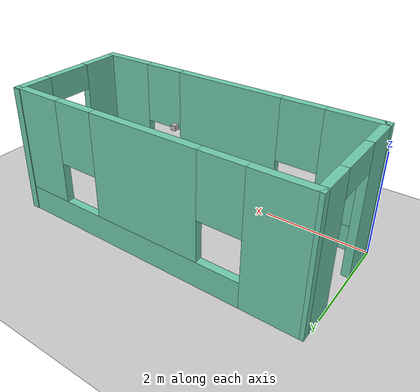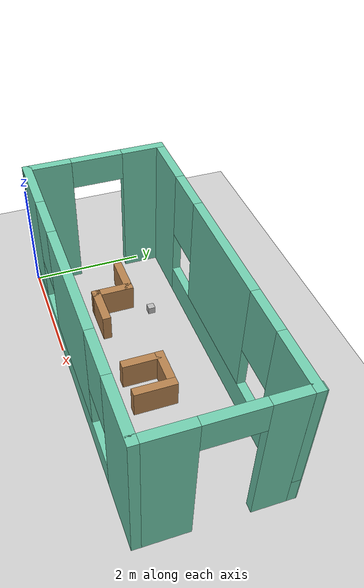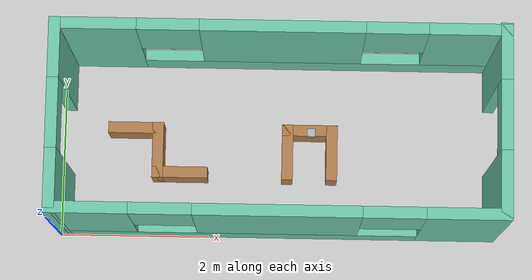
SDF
<sdf version="1.6">
 <world name="default">
  <light name="sun" type="directional">
   <pose>0 0 10 0 -0 0</pose>
   <diffuse>0.8 0.8 0.8 1</diffuse>
   <specular>0.2 0.2 0.2 1</specular>
   <attenuation>
    <range>1000</range>
    <constant>0.9</constant>
    <linear>0.01</linear>
    <quadratic>0.001</quadratic>
   </attenuation>
   <direction>-0.5 0.1 -0.9</direction>
  </light>
  <model name="ground_plane">
   <static>1</static>
   <link name="link">
    <collision name="collision">
     <geometry><plane><normal>0 0 1</normal><size>100 100</size></plane></geometry>
     <surface>
      <contact><collide_bitmask>65535</collide_bitmask></contact>
      <friction><ode><mu>100</mu><mu2>50</mu2></ode></friction>
     </surface>
    </collision>
    <visual name="visual">
     <cast_shadows>0</cast_shadows>
     <geometry><plane><normal>0 0 1</normal><size>100 100</size></plane></geometry>
     <material>
      <script><uri>file://media/materials/scripts/gazebo.material</uri><name>Gazebo/Grey</name></script>
     </material>
    </visual>
   </link>
  </model>
  <gravity>0 0 -9.8</gravity>
  <magnetic_field>6e-06 2.3e-05 -4.2e-05</magnetic_field>
  <atmosphere type="adiabatic"/>
  <physics name="default_physics" default="0" type="ode">
   <max_step_size>0.001</max_step_size>
   <real_time_factor>1</real_time_factor>
   <real_time_update_rate>1000</real_time_update_rate>
  </physics>
  <scene><ambient>0.4 0.4 0.4 1</ambient><background>0.7 0.7 0.7 1</background><shadows>1</shadows></scene>
  <audio><device>default</device></audio>
  <spherical_coordinates>
   <surface_model>EARTH_WGS84</surface_model>
   <latitude_deg>0</latitude_deg>
   <longitude_deg>0</longitude_deg>
   <elevation>0</elevation>
   <heading_deg>0</heading_deg>
  </spherical_coordinates>
  <model name="house_1">
   <pose>2.94761 1.2633 0 0 -0 0</pose>
   <link name="Wall_0">
    <pose>-2.86844 -0.008536 0 0 -0 1.5708</pose>
    <visual name="Wall_0_Visual_0">
     <pose>-0.837769 0 1.25 0 -0 0</pose>
     <geometry><box><size>0.824461 0.15 2.5</size></box></geometry>
     <material>
      <script><uri>file://media/materials/scripts/gazebo.material</uri><name>Gazebo/Grey</name></script>
      <ambient>0.435294 0.796078 0.67451 1</ambient>
     </material>
     <meta><layer>0</layer></meta>
    </visual>
    <collision name="Wall_0_Collision_0">
     <geometry><box><size>0.824461 0.15 2.5</size></box></geometry>
     <pose>-0.837769 0 1.25 0 -0 0</pose>
    </collision>
    <visual name="Wall_0_Visual_1">
     <pose>0.862231 0 1.25 0 -0 0</pose>
     <geometry><box><size>0.775539 0.15 2.5</size></box></geometry>
     <material>
      <script><uri>file://media/materials/scripts/gazebo.material</uri><name>Gazebo/Grey</name></script>
      <ambient>0.435294 0.796078 0.67451 1</ambient>
     </material>
     <meta><layer>0</layer></meta>
    </visual>
    <collision name="Wall_0_Collision_1">
     <geometry><box><size>0.775539 0.15 2.5</size></box></geometry>
     <pose>0.862231 0 1.25 0 -0 0</pose>
    </collision>
    <visual name="Wall_0_Visual_2">
     <pose>0.024461 0 2.25 0 -0 0</pose>
     <geometry><box><size>0.9 0.15 0.5</size></box></geometry>
     <material>
      <script><uri>file://media/materials/scripts/gazebo.material</uri><name>Gazebo/Grey</name></script>
      <ambient>0.435294 0.796078 0.67451 1</ambient>
     </material>
     <meta><layer>0</layer></meta>
    </visual>
    <collision name="Wall_0_Collision_2">
     <geometry><box><size>0.9 0.15 0.5</size></box></geometry>
     <pose>0.024461 0 2.25 0 -0 0</pose>
    </collision>
   </link>
   <link name="Wall_1">
    <pose>0 1.16741 0 0 -0 0.000329</pose>
    <visual name="Wall_1_Visual_0">
     <pose>-2.38896 0 1.25 0 -0 0</pose>
     <geometry><box><size>1.10948 0.15 2.5</size></box></geometry>
     <material>
      <script><uri>file://media/materials/scripts/gazebo.material</uri><name>Gazebo/Grey</name></script>
      <ambient>0.435294 0.796078 0.67451 1</ambient>
     </material>
     <meta><layer>0</layer></meta>
    </visual>
    <collision name="Wall_1_Collision_0">
     <geometry><box><size>1.10948 0.15 2.5</size></box></geometry>
     <pose>-2.38896 0 1.25 0 -0 0</pose>
    </collision>
    <visual name="Wall_1_Visual_1">
     <pose>0.554742 0 0.25 0 -0 0</pose>
     <geometry><box><size>4.77792 0.15 0.5</size></box></geometry>
     <material>
      <script><uri>file://media/materials/scripts/gazebo.material</uri><name>Gazebo/Grey</name></script>
      <ambient>0.435294 0.796078 0.67451 1</ambient>
     </material>
     <meta><layer>0</layer></meta>
    </visual>
    <collision name="Wall_1_Collision_1">
     <geometry><box><size>4.77792 0.15 0.5</size></box></geometry>
     <pose>0.554742 0 0.25 0 -0 0</pose>
    </collision>
    <visual name="Wall_1_Visual_2">
     <pose>0.024303 0 1.5 0 -0 0</pose>
     <geometry><box><size>2.11705 0.15 2</size></box></geometry>
     <material>
      <script><uri>file://media/materials/scripts/gazebo.material</uri><name>Gazebo/Grey</name></script>
      <ambient>0.435294 0.796078 0.67451 1</ambient>
     </material>
     <meta><layer>0</layer></meta>
    </visual>
    <collision name="Wall_1_Collision_2">
     <geometry><box><size>2.11705 0.15 2</size></box></geometry>
     <pose>0.024303 0 1.5 0 -0 0</pose>
    </collision>
    <visual name="Wall_1_Visual_3">
     <pose>2.41326 0 1.5 0 -0 0</pose>
     <geometry><box><size>1.06088 0.15 2</size></box></geometry>
     <material>
      <script><uri>file://media/materials/scripts/gazebo.material</uri><name>Gazebo/Grey</name></script>
      <ambient>0.435294 0.796078 0.67451 1</ambient>
     </material>
     <meta><layer>0</layer></meta>
    </visual>
    <collision name="Wall_1_Collision_3">
     <geometry><box><size>1.06088 0.15 2</size></box></geometry>
     <pose>2.41326 0 1.5 0 -0 0</pose>
    </collision>
    <visual name="Wall_1_Visual_4">
     <pose>-1.43422 0 1.9 0 -0 0</pose>
     <geometry><box><size>0.8 0.15 1.2</size></box></geometry>
     <material>
      <script><uri>file://media/materials/scripts/gazebo.material</uri><name>Gazebo/Grey</name></script>
      <ambient>0.435294 0.796078 0.67451 1</ambient>
     </material>
     <meta><layer>0</layer></meta>
    </visual>
    <collision name="Wall_1_Collision_4">
     <geometry><box><size>0.8 0.15 1.2</size></box></geometry>
     <pose>-1.43422 0 1.9 0 -0 0</pose>
    </collision>
    <visual name="Wall_1_Visual_5">
     <pose>1.48283 0 1.9 0 -0 0</pose>
     <geometry><box><size>0.8 0.15 1.2</size></box></geometry>
     <material>
      <script><uri>file://media/materials/scripts/gazebo.material</uri><name>Gazebo/Grey</name></script>
      <ambient>0.435294 0.796078 0.67451 1</ambient>
     </material>
     <meta><layer>0</layer></meta>
    </visual>
    <collision name="Wall_1_Collision_5">
     <geometry><box><size>0.8 0.15 1.2</size></box></geometry>
     <pose>1.48283 0 1.9 0 -0 0</pose>
    </collision>
   </link>
   <link name="Wall_10">
    <collision name="Wall_10_Collision">
     <geometry><box><size>0.75 0.15 0.5</size></box></geometry>
     <pose>0 0 0.25 0 -0 0</pose>
    </collision>
    <visual name="Wall_10_Visual">
     <pose>0 0 0.25 0 -0 0</pose>
     <geometry><box><size>0.75 0.15 0.5</size></box></geometry>
     <material>
      <script><uri>file://media/materials/scripts/gazebo.material</uri><name>Gazebo/Wood</name></script>
      <ambient>1 1 1 1</ambient>
     </material>
     <meta><layer>0</layer></meta>
    </visual>
    <pose>0.411561 0.159464 0 0 -0 0</pose>
   </link>
   <link name="Wall_11">
    <collision name="Wall_11_Collision">
     <geometry><box><size>0.75 0.15 0.5</size></box></geometry>
     <pose>0 0 0.25 0 -0 0</pose>
    </collision>
    <visual name="Wall_11_Visual">
     <pose>0 0 0.25 0 -0 0</pose>
     <geometry><box><size>0.75 0.15 0.5</size></box></geometry>
     <material>
      <script><uri>file://media/materials/scripts/gazebo.material</uri><name>Gazebo/Wood</name></script>
      <ambient>1 1 1 1</ambient>
     </material>
     <meta><layer>0</layer></meta>
    </visual>
    <pose>0.711561 -0.140536 0 0 -0 -1.5708</pose>
   </link>
   <link name="Wall_2">
    <pose>2.86844 0.008561 0 0 -0 -1.5708</pose>
    <visual name="Wall_2_Visual_0">
     <pose>-0.88778 0 1.25 0 -0 0</pose>
     <geometry><box><size>0.724439 0.15 2.5</size></box></geometry>
     <material>
      <script><uri>file://media/materials/scripts/gazebo.material</uri><name>Gazebo/Grey</name></script>
      <ambient>0.435294 0.796078 0.67451 1</ambient>
     </material>
     <meta><layer>0</layer></meta>
    </visual>
    <collision name="Wall_2_Collision_0">
     <geometry><box><size>0.724439 0.15 2.5</size></box></geometry>
     <pose>-0.88778 0 1.25 0 -0 0</pose>
    </collision>
    <visual name="Wall_2_Visual_1">
     <pose>0.81222 0 1.25 0 -0 0</pose>
     <geometry><box><size>0.875561 0.15 2.5</size></box></geometry>
     <material>
      <script><uri>file://media/materials/scripts/gazebo.material</uri><name>Gazebo/Grey</name></script>
      <ambient>0.435294 0.796078 0.67451 1</ambient>
     </material>
     <meta><layer>0</layer></meta>
    </visual>
    <collision name="Wall_2_Collision_1">
     <geometry><box><size>0.875561 0.15 2.5</size></box></geometry>
     <pose>0.81222 0 1.25 0 -0 0</pose>
    </collision>
    <visual name="Wall_2_Visual_2">
     <pose>-0.075561 0 2.25 0 -0 0</pose>
     <geometry><box><size>0.9 0.15 0.5</size></box></geometry>
     <material>
      <script><uri>file://media/materials/scripts/gazebo.material</uri><name>Gazebo/Grey</name></script>
      <ambient>0.435294 0.796078 0.67451 1</ambient>
     </material>
     <meta><layer>0</layer></meta>
    </visual>
    <collision name="Wall_2_Collision_2">
     <geometry><box><size>0.9 0.15 0.5</size></box></geometry>
     <pose>-0.075561 0 2.25 0 -0 0</pose>
    </collision>
   </link>
   <link name="Wall_3">
    <pose>0 -1.18259 0 0 -0 -3.14126</pose>
    <visual name="Wall_3_Visual_0">
     <pose>-2.40433 0 1.25 0 -0 0</pose>
     <geometry><box><size>1.07875 0.15 2.5</size></box></geometry>
     <material>
      <script><uri>file://media/materials/scripts/gazebo.material</uri><name>Gazebo/Grey</name></script>
      <ambient>0.435294 0.796078 0.67451 1</ambient>
     </material>
     <meta><layer>0</layer></meta>
    </visual>
    <collision name="Wall_3_Collision_0">
     <geometry><box><size>1.07875 0.15 2.5</size></box></geometry>
     <pose>-2.40433 0 1.25 0 -0 0</pose>
    </collision>
    <visual name="Wall_3_Visual_1">
     <pose>0.539375 0 0.25 0 -0 0</pose>
     <geometry><box><size>4.80866 0.15 0.5</size></box></geometry>
     <material>
      <script><uri>file://media/materials/scripts/gazebo.material</uri><name>Gazebo/Grey</name></script>
      <ambient>0.435294 0.796078 0.67451 1</ambient>
     </material>
     <meta><layer>0</layer></meta>
    </visual>
    <collision name="Wall_3_Collision_1">
     <geometry><box><size>4.80866 0.15 0.5</size></box></geometry>
     <pose>0.539375 0 0.25 0 -0 0</pose>
    </collision>
    <visual name="Wall_3_Visual_2">
     <pose>0.005122 0 1.5 0 -0 0</pose>
     <geometry><box><size>2.14015 0.15 2</size></box></geometry>
     <material>
      <script><uri>file://media/materials/scripts/gazebo.material</uri><name>Gazebo/Grey</name></script>
      <ambient>0.435294 0.796078 0.67451 1</ambient>
     </material>
     <meta><layer>0</layer></meta>
    </visual>
    <collision name="Wall_3_Collision_2">
     <geometry><box><size>2.14015 0.15 2</size></box></geometry>
     <pose>0.005122 0 1.5 0 -0 0</pose>
    </collision>
    <visual name="Wall_3_Visual_3">
     <pose>2.40945 0 1.5 0 -0 0</pose>
     <geometry><box><size>1.06851 0.15 2</size></box></geometry>
     <material>
      <script><uri>file://media/materials/scripts/gazebo.material</uri><name>Gazebo/Grey</name></script>
      <ambient>0.435294 0.796078 0.67451 1</ambient>
     </material>
     <meta><layer>0</layer></meta>
    </visual>
    <collision name="Wall_3_Collision_3">
     <geometry><box><size>1.06851 0.15 2</size></box></geometry>
     <pose>2.40945 0 1.5 0 -0 0</pose>
    </collision>
    <visual name="Wall_3_Visual_4">
     <pose>-1.46495 0 1.9 0 -0 0</pose>
     <geometry><box><size>0.8 0.15 1.2</size></box></geometry>
     <material>
      <script><uri>file://media/materials/scripts/gazebo.material</uri><name>Gazebo/Grey</name></script>
      <ambient>0.435294 0.796078 0.67451 1</ambient>
     </material>
     <meta><layer>0</layer></meta>
    </visual>
    <collision name="Wall_3_Collision_4">
     <geometry><box><size>0.8 0.15 1.2</size></box></geometry>
     <pose>-1.46495 0 1.9 0 -0 0</pose>
    </collision>
    <visual name="Wall_3_Visual_5">
     <pose>1.4752 0 1.9 0 -0 0</pose>
     <geometry><box><size>0.8 0.15 1.2</size></box></geometry>
     <material>
      <script><uri>file://media/materials/scripts/gazebo.material</uri><name>Gazebo/Grey</name></script>
      <ambient>0.435294 0.796078 0.67451 1</ambient>
     </material>
     <meta><layer>0</layer></meta>
    </visual>
    <collision name="Wall_3_Collision_5">
     <geometry><box><size>0.8 0.15 1.2</size></box></geometry>
     <pose>1.4752 0 1.9 0 -0 0</pose>
    </collision>
   </link>
   <link name="Wall_5">
    <collision name="Wall_5_Collision">
     <geometry><box><size>0.75 0.15 0.5</size></box></geometry>
     <pose>0 0 0.25 0 -0 0</pose>
    </collision>
    <visual name="Wall_5_Visual">
     <pose>0 0 0.25 0 -0 0</pose>
     <geometry><box><size>0.75 0.15 0.5</size></box></geometry>
     <material>
      <script><uri>file://media/materials/scripts/gazebo.material</uri><name>Gazebo/Wood</name></script>
      <ambient>1 1 1 1</ambient>
     </material>
     <meta><layer>0</layer></meta>
    </visual>
    <pose>-1.94144 0.163464 0 0 -0 0</pose>
   </link>
   <link name="Wall_6">
    <collision name="Wall_6_Collision">
     <geometry><box><size>0.75 0.15 0.5</size></box></geometry>
     <pose>0 0 0.25 0 -0 0</pose>
    </collision>
    <visual name="Wall_6_Visual">
     <pose>0 0 0.25 0 -0 0</pose>
     <geometry><box><size>0.75 0.15 0.5</size></box></geometry>
     <material>
      <script><uri>file://media/materials/scripts/gazebo.material</uri><name>Gazebo/Wood</name></script>
      <ambient>1 1 1 1</ambient>
     </material>
     <meta><layer>0</layer></meta>
    </visual>
    <pose>-1.64144 -0.136536 0 0 -0 -1.5708</pose>
   </link>
   <link name="Wall_7">
    <collision name="Wall_7_Collision">
     <geometry><box><size>0.75 0.15 0.5</size></box></geometry>
     <pose>0 0 0.25 0 -0 0</pose>
    </collision>
    <visual name="Wall_7_Visual">
     <pose>0 0 0.25 0 -0 0</pose>
     <geometry><box><size>0.75 0.15 0.5</size></box></geometry>
     <material>
      <script><uri>file://media/materials/scripts/gazebo.material</uri><name>Gazebo/Wood</name></script>
      <ambient>1 1 1 1</ambient>
     </material>
     <meta><layer>0</layer></meta>
    </visual>
    <pose>-1.34144 -0.436536 0 0 -0 0</pose>
   </link>
   <link name="Wall_9">
    <collision name="Wall_9_Collision">
     <geometry><box><size>0.75 0.15 0.5</size></box></geometry>
     <pose>0 0 0.25 0 -0 0</pose>
    </collision>
    <visual name="Wall_9_Visual">
     <pose>0 0 0.25 0 -0 0</pose>
     <geometry><box><size>0.75 0.15 0.5</size></box></geometry>
     <material>
      <script><uri>file://media/materials/scripts/gazebo.material</uri><name>Gazebo/Wood</name></script>
      <ambient>1 1 1 1</ambient>
     </material>
     <meta><layer>0</layer></meta>
    </visual>
    <pose>0.111561 -0.140536 0 0 -0 1.5708</pose>
   </link>
   <static>1</static>
  </model>
  <light name="user_point_light_0" type="point">
   <pose>2.8636 1.06299 1 0 -0 0</pose>
   <diffuse>0.5 0.5 0.5 1</diffuse>
   <specular>0.1 0.1 0.1 1</specular>
   <attenuation>
    <range>20</range>
    <constant>0.5</constant>
    <linear>0.01</linear>
    <quadratic>0.001</quadratic>
   </attenuation>
   <cast_shadows>0</cast_shadows>
   <direction>0 0 -1</direction>
  </light>
  <model name="camera">
   <pose>3.35786 1.15714 1.92443 0 1.55754 0</pose>
   <link name="camera_gazebo_link">
    <gravity>false</gravity>
    <inertial>
     <mass>0.1</mass>
     <inertia>
      <ixx>0.000166667</ixx>
      <iyy>0.000166667</iyy>
      <izz>0.000166667</izz>
      <ixy>0</ixy>
      <ixz>0</ixz>
      <iyz>0</iyz>
     </inertia>
    </inertial>
    <collision name="collision"><geometry><box><size>0.1 0.1 0.1</size></box></geometry></collision>
    <visual name="visual"><geometry><box><size>0.1 0.1 0.1</size></box></geometry></visual>
    <sensor name="camera" type="camera">
     <camera name="__default__">
      <horizontal_fov>1.047</horizontal_fov>
      <image><width>320</width><height>240</height></image>
      <clip><near>0.1</near><far>100</far></clip>
     </camera>
     <always_on>1</always_on>
     <update_rate>30</update_rate>
     <visualize>1</visualize>
    </sensor>
   </link>
  </model>
 </world>
</sdf>
